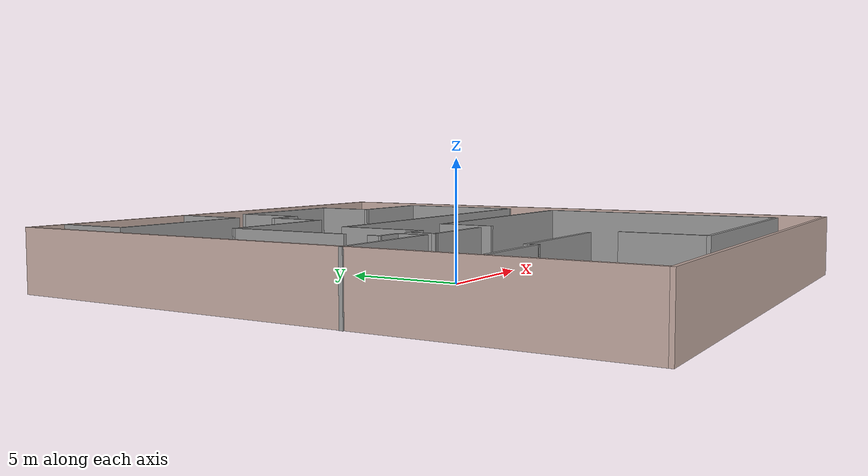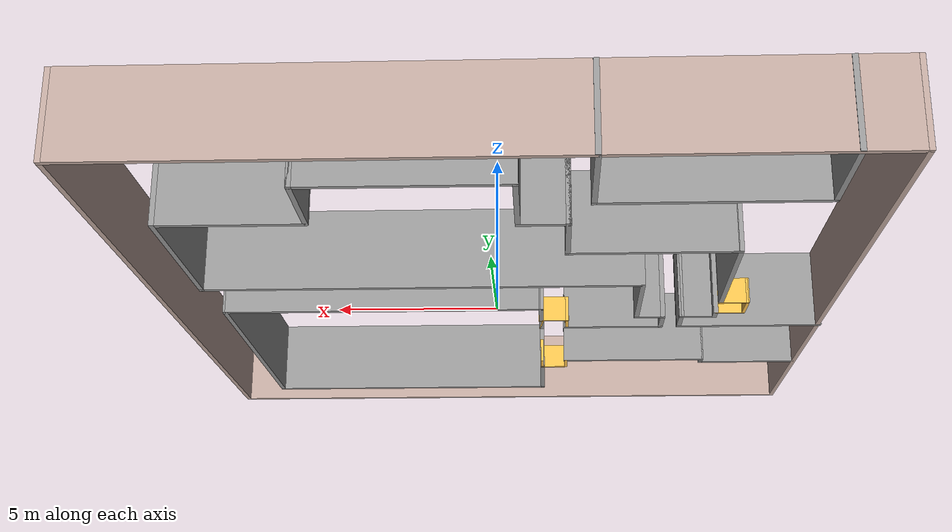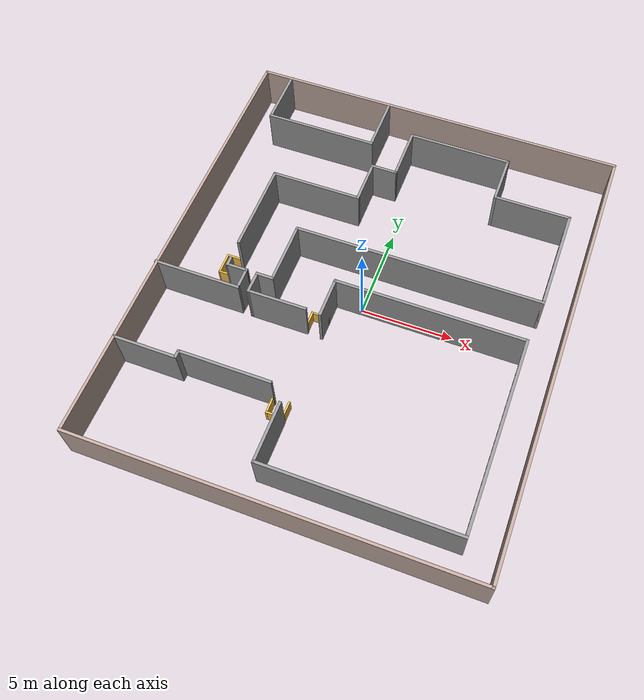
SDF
<?xml version='1.0'?>
<sdf version='1.6'>
  <model name='IKEAfactoryV2'>
    <pose frame=''>-0.0511 -0.01664 0 0 -0 0</pose>
    <link name='Wall_0'>
      <collision name='Wall_0_Collision'>
        <geometry>
          <box>
            <size>21 0.15 2.5</size>
          </box>
        </geometry>
        <pose frame=''>0 0 1.25 0 -0 0</pose>
      </collision>
      <visual name='Wall_0_Visual'>
        <pose frame=''>0 0 1.25 0 -0 0</pose>
        <geometry>
          <box>
            <size>21 0.15 2.5</size>
          </box>
        </geometry>
        <material>
          <script>
            <uri>file://media/materials/scripts/gazebo.material</uri>
            <name>Gazebo/Grey</name>
          </script>
          <ambient>0.760784 0.662745 0.627451 1</ambient>
        </material>
        <meta>
          <layer>0</layer>
        </meta>
      </visual>
      <pose frame=''>0.0271 -12.1824 0 0 -0 3.14159</pose>
    </link>
    <link name='Wall_1'>
      <collision name='Wall_1_Collision'>
        <geometry>
          <box>
            <size>24.5 0.15 2.5</size>
          </box>
        </geometry>
        <pose frame=''>0 0 1.25 0 -0 0</pose>
      </collision>
      <visual name='Wall_1_Visual'>
        <pose frame=''>0 0 1.25 0 -0 0</pose>
        <geometry>
          <box>
            <size>24.5 0.15 2.5</size>
          </box>
        </geometry>
        <material>
          <script>
            <uri>file://media/materials/scripts/gazebo.material</uri>
            <name>Gazebo/Grey</name>
          </script>
          <ambient>0.760784 0.662745 0.627451 1</ambient>
        </material>
        <meta>
          <layer>0</layer>
        </meta>
      </visual>
      <pose frame=''>-10.3979 -0.00736 0 0 -0 1.5708</pose>
    </link>
    <link name='Wall_11'>
      <collision name='Wall_11_Collision'>
        <geometry>
          <box>
            <size>3.5 0.15 2.5</size>
          </box>
        </geometry>
        <pose frame=''>0 0 1.25 0 -0 0</pose>
      </collision>
      <visual name='Wall_11_Visual'>
        <pose frame=''>0 0 1.25 0 -0 0</pose>
        <geometry>
          <box>
            <size>3.5 0.15 2.5</size>
          </box>
        </geometry>
        <material>
          <script>
            <uri>file://media/materials/scripts/gazebo.material</uri>
            <name>Gazebo/Grey</name>
          </script>
          <ambient>1 1 1 1</ambient>
        </material>
        <meta>
          <layer>0</layer>
        </meta>
      </visual>
      <pose frame=''>-8.71777 -6.91658 0 0 -0 0</pose>
    </link>
    <link name='Wall_14'>
      <collision name='Wall_14_Collision'>
        <geometry>
          <box>
            <size>0.5 0.15 2.5</size>
          </box>
        </geometry>
        <pose frame=''>0 0 1.25 0 -0 0</pose>
      </collision>
      <visual name='Wall_14_Visual'>
        <pose frame=''>0 0 1.25 0 -0 0</pose>
        <geometry>
          <box>
            <size>0.5 0.15 2.5</size>
          </box>
        </geometry>
        <material>
          <script>
            <uri>file://media/materials/scripts/gazebo.material</uri>
            <name>Gazebo/Grey</name>
          </script>
          <ambient>1 1 1 1</ambient>
        </material>
        <meta>
          <layer>0</layer>
        </meta>
      </visual>
      <pose frame=''>-7.04277 -6.74158 0 0 -0 1.5708</pose>
    </link>
    <link name='Wall_17'>
      <collision name='Wall_17_Collision'>
        <geometry>
          <box>
            <size>5 0.15 2.5</size>
          </box>
        </geometry>
        <pose frame=''>0 0 1.25 0 -0 0</pose>
      </collision>
      <visual name='Wall_17_Visual'>
        <pose frame=''>0 0 1.25 0 -0 0</pose>
        <geometry>
          <box>
            <size>5 0.15 2.5</size>
          </box>
        </geometry>
        <material>
          <script>
            <uri>file://media/materials/scripts/gazebo.material</uri>
            <name>Gazebo/Grey</name>
          </script>
          <ambient>1 1 1 1</ambient>
        </material>
        <meta>
          <layer>0</layer>
        </meta>
      </visual>
      <pose frame=''>-4.61783 -6.56647 0 0 -0 4.5e-05</pose>
    </link>
    <link name='Wall_18'>
      <collision name='Wall_18_Collision'>
        <geometry>
          <box>
            <size>0.950221 0.1 0.8</size>
          </box>
        </geometry>
        <pose frame=''>0 0 0.4 0 -0 0</pose>
      </collision>
      <visual name='Wall_18_Visual'>
        <pose frame=''>0 0 0.4 0 -0 0</pose>
        <geometry>
          <box>
            <size>0.950221 0.1 0.8</size>
          </box>
        </geometry>
        <material>
          <script>
            <uri>file://media/materials/scripts/gazebo.material</uri>
            <name>Gazebo/Grey</name>
          </script>
          <ambient>1 0.764706 0.305882 1</ambient>
        </material>
        <meta>
          <layer>0</layer>
        </meta>
      </visual>
      <pose frame=''>-2.1929 -6.99136 0 0 -0 -1.5708</pose>
    </link>
    <link name='Wall_19'>
      <collision name='Wall_19_Collision'>
        <geometry>
          <box>
            <size>0.950134 0.1 0.8</size>
          </box>
        </geometry>
        <pose frame=''>0 0 0.4 0 -0 0</pose>
      </collision>
      <visual name='Wall_19_Visual'>
        <pose frame=''>0 0 0.4 0 -0 0</pose>
        <geometry>
          <box>
            <size>0.950134 0.1 0.8</size>
          </box>
        </geometry>
        <material>
          <script>
            <uri>file://media/materials/scripts/gazebo.material</uri>
            <name>Gazebo/Grey</name>
          </script>
          <ambient>1 0.764706 0.305882 1</ambient>
        </material>
        <meta>
          <layer>0</layer>
        </meta>
      </visual>
      <pose frame=''>-1.7679 -7.41636 0 0 -0 0</pose>
    </link>
    <link name='Wall_20'>
      <collision name='Wall_20_Collision'>
        <geometry>
          <box>
            <size>0.94978 0.1 0.8</size>
          </box>
        </geometry>
        <pose frame=''>0 0 0.4 0 -0 0</pose>
      </collision>
      <visual name='Wall_20_Visual'>
        <pose frame=''>0 0 0.4 0 -0 0</pose>
        <geometry>
          <box>
            <size>0.94978 0.1 0.8</size>
          </box>
        </geometry>
        <material>
          <script>
            <uri>file://media/materials/scripts/gazebo.material</uri>
            <name>Gazebo/Grey</name>
          </script>
          <ambient>1 0.764706 0.305882 1</ambient>
        </material>
        <meta>
          <layer>0</layer>
        </meta>
      </visual>
      <pose frame=''>-1.3429 -6.99136 0 0 -0 1.5708</pose>
    </link>
    <link name='Wall_22'>
      <collision name='Wall_22_Collision'>
        <geometry>
          <box>
            <size>3.25 0.15 2.5</size>
          </box>
        </geometry>
        <pose frame=''>0 0 1.25 0 -0 0</pose>
      </collision>
      <visual name='Wall_22_Visual'>
        <pose frame=''>0 0 1.25 0 -0 0</pose>
        <geometry>
          <box>
            <size>3.25 0.15 2.5</size>
          </box>
        </geometry>
        <material>
          <script>
            <uri>file://media/materials/scripts/gazebo.material</uri>
            <name>Gazebo/Grey</name>
          </script>
          <ambient>1 1 1 1</ambient>
        </material>
        <meta>
          <layer>0</layer>
        </meta>
      </visual>
      <pose frame=''>-1.34283 -8.96647 0 0 -0 -1.57075</pose>
    </link>
    <link name='Wall_23'>
      <collision name='Wall_23_Collision'>
        <geometry>
          <box>
            <size>10.25 0.15 2.5</size>
          </box>
        </geometry>
        <pose frame=''>0 0 1.25 0 -0 0</pose>
      </collision>
      <visual name='Wall_23_Visual'>
        <pose frame=''>0 0 1.25 0 -0 0</pose>
        <geometry>
          <box>
            <size>10.25 0.15 2.5</size>
          </box>
        </geometry>
        <material>
          <script>
            <uri>file://media/materials/scripts/gazebo.material</uri>
            <name>Gazebo/Grey</name>
          </script>
          <ambient>1 1 1 1</ambient>
        </material>
        <meta>
          <layer>0</layer>
        </meta>
      </visual>
      <pose frame=''>3.70723 -10.5166 0 0 -0 0</pose>
    </link>
    <link name='Wall_24'>
      <collision name='Wall_24_Collision'>
        <geometry>
          <box>
            <size>10.5 0.15 2.5</size>
          </box>
        </geometry>
        <pose frame=''>0 0 1.25 0 -0 0</pose>
      </collision>
      <visual name='Wall_24_Visual'>
        <pose frame=''>0 0 1.25 0 -0 0</pose>
        <geometry>
          <box>
            <size>10.5 0.15 2.5</size>
          </box>
        </geometry>
        <material>
          <script>
            <uri>file://media/materials/scripts/gazebo.material</uri>
            <name>Gazebo/Grey</name>
          </script>
          <ambient>1 1 1 1</ambient>
        </material>
        <meta>
          <layer>0</layer>
        </meta>
      </visual>
      <pose frame=''>8.75723 -5.34158 0 0 -0 1.5708</pose>
    </link>
    <link name='Wall_25'>
      <collision name='Wall_25_Collision'>
        <geometry>
          <box>
            <size>10.2402 0.15 2.5</size>
          </box>
        </geometry>
        <pose frame=''>0 0 1.25 0 -0 0</pose>
      </collision>
      <visual name='Wall_25_Visual'>
        <pose frame=''>0 0 1.25 0 -0 0</pose>
        <geometry>
          <box>
            <size>10.2402 0.15 2.5</size>
          </box>
        </geometry>
        <material>
          <script>
            <uri>file://media/materials/scripts/gazebo.material</uri>
            <name>Gazebo/Grey</name>
          </script>
          <ambient>1 1 1 1</ambient>
        </material>
        <meta>
          <layer>0</layer>
        </meta>
      </visual>
      <pose frame=''>3.71213 -0.16495 0 0 -0 3.14127</pose>
    </link>
    <link name='Wall_27'>
      <collision name='Wall_27_Collision'>
        <geometry>
          <box>
            <size>2.25 0.15 2.5</size>
          </box>
        </geometry>
        <pose frame=''>0 0 1.25 0 -0 0</pose>
      </collision>
      <visual name='Wall_27_Visual'>
        <pose frame=''>0 0 1.25 0 -0 0</pose>
        <geometry>
          <box>
            <size>2.25 0.15 2.5</size>
          </box>
        </geometry>
        <material>
          <script>
            <uri>file://media/materials/scripts/gazebo.material</uri>
            <name>Gazebo/Grey</name>
          </script>
          <ambient>1 1 1 1</ambient>
        </material>
        <meta>
          <layer>0</layer>
        </meta>
      </visual>
      <pose frame=''>-1.33607 -1.21334 0 0 -0 -1.57063</pose>
    </link>
    <link name='Wall_30'>
      <collision name='Wall_30_Collision'>
        <geometry>
          <box>
            <size>0.916541 0.1 0.8</size>
          </box>
        </geometry>
        <pose frame=''>0 0 0.4 0 -0 0</pose>
      </collision>
      <visual name='Wall_30_Visual'>
        <pose frame=''>0 0 0.4 0 -0 0</pose>
        <geometry>
          <box>
            <size>0.916541 0.1 0.8</size>
          </box>
        </geometry>
        <material>
          <script>
            <uri>file://media/materials/scripts/gazebo.material</uri>
            <name>Gazebo/Grey</name>
          </script>
          <ambient>1 0.764706 0.305882 1</ambient>
        </material>
        <meta>
          <layer>0</layer>
        </meta>
      </visual>
      <pose frame=''>-2.16649 -1.82481 0 0 -0 -1.57128</pose>
    </link>
    <link name='Wall_31'>
      <collision name='Wall_31_Collision'>
        <geometry>
          <box>
            <size>3.23616 0.15 2.5</size>
          </box>
        </geometry>
        <pose frame=''>0 0 1.25 0 -0 0</pose>
      </collision>
      <visual name='Wall_31_Visual'>
        <pose frame=''>0 0 1.25 0 -0 0</pose>
        <geometry>
          <box>
            <size>3.23616 0.15 2.5</size>
          </box>
        </geometry>
        <material>
          <script>
            <uri>file://media/materials/scripts/gazebo.material</uri>
            <name>Gazebo/Grey</name>
          </script>
          <ambient>1 1 1 1</ambient>
        </material>
        <meta>
          <layer>0</layer>
        </meta>
      </visual>
      <pose frame=''>-3.7094 -2.22824 0 0 -0 -3.13967</pose>
    </link>
    <link name='Wall_34'>
      <collision name='Wall_34_Collision'>
        <geometry>
          <box>
            <size>1.25 0.15 2.5</size>
          </box>
        </geometry>
        <pose frame=''>0 0 1.25 0 -0 0</pose>
      </collision>
      <visual name='Wall_34_Visual'>
        <pose frame=''>0 0 1.25 0 -0 0</pose>
        <geometry>
          <box>
            <size>1.25 0.15 2.5</size>
          </box>
        </geometry>
        <material>
          <script>
            <uri>file://media/materials/scripts/gazebo.material</uri>
            <name>Gazebo/Grey</name>
          </script>
          <ambient>1 1 1 1</ambient>
        </material>
        <meta>
          <layer>0</layer>
        </meta>
      </visual>
      <pose frame=''>-5.2521 -1.68121 0 0 -0 1.5708</pose>
    </link>
    <link name='Wall_35'>
      <collision name='Wall_35_Collision'>
        <geometry>
          <box>
            <size>1 0.15 2.5</size>
          </box>
        </geometry>
        <pose frame=''>0 0 1.25 0 -0 0</pose>
      </collision>
      <visual name='Wall_35_Visual'>
        <pose frame=''>0 0 1.25 0 -0 0</pose>
        <geometry>
          <box>
            <size>1 0.15 2.5</size>
          </box>
        </geometry>
        <material>
          <script>
            <uri>file://media/materials/scripts/gazebo.material</uri>
            <name>Gazebo/Grey</name>
          </script>
          <ambient>1 1 1 1</ambient>
        </material>
        <meta>
          <layer>0</layer>
        </meta>
      </visual>
      <pose frame=''>-4.8271 -1.13122 0 0 -0 0</pose>
    </link>
    <link name='Wall_36'>
      <collision name='Wall_36_Collision'>
        <geometry>
          <box>
            <size>3.5 0.15 2.5</size>
          </box>
        </geometry>
        <pose frame=''>0 0 1.25 0 -0 0</pose>
      </collision>
      <visual name='Wall_36_Visual'>
        <pose frame=''>0 0 1.25 0 -0 0</pose>
        <geometry>
          <box>
            <size>3.5 0.15 2.5</size>
          </box>
        </geometry>
        <material>
          <script>
            <uri>file://media/materials/scripts/gazebo.material</uri>
            <name>Gazebo/Grey</name>
          </script>
          <ambient>1 1 1 1</ambient>
        </material>
        <meta>
          <layer>0</layer>
        </meta>
      </visual>
      <pose frame=''>-4.4021 0.543785 0 0 -0 1.5708</pose>
    </link>
    <link name='Wall_37'>
      <collision name='Wall_37_Collision'>
        <geometry>
          <box>
            <size>13.5 0.15 2.5</size>
          </box>
        </geometry>
        <pose frame=''>0 0 1.25 0 -0 0</pose>
      </collision>
      <visual name='Wall_37_Visual'>
        <pose frame=''>0 0 1.25 0 -0 0</pose>
        <geometry>
          <box>
            <size>13.5 0.15 2.5</size>
          </box>
        </geometry>
        <material>
          <script>
            <uri>file://media/materials/scripts/gazebo.material</uri>
            <name>Gazebo/Grey</name>
          </script>
          <ambient>1 1 1 1</ambient>
        </material>
        <meta>
          <layer>0</layer>
        </meta>
      </visual>
      <pose frame=''>2.2729 2.21879 0 0 -0 0</pose>
    </link>
    <link name='Wall_39'>
      <collision name='Wall_39_Collision'>
        <geometry>
          <box>
            <size>5.75 0.15 2.5</size>
          </box>
        </geometry>
        <pose frame=''>0 0 1.25 0 -0 0</pose>
      </collision>
      <visual name='Wall_39_Visual'>
        <pose frame=''>0 0 1.25 0 -0 0</pose>
        <geometry>
          <box>
            <size>5.75 0.15 2.5</size>
          </box>
        </geometry>
        <material>
          <script>
            <uri>file://media/materials/scripts/gazebo.material</uri>
            <name>Gazebo/Grey</name>
          </script>
          <ambient>1 1 1 1</ambient>
        </material>
        <meta>
          <layer>0</layer>
        </meta>
      </visual>
      <pose frame=''>8.9479 5.01879 0 0 -0 1.5708</pose>
    </link>
    <link name='Wall_4'>
      <collision name='Wall_4_Collision'>
        <geometry>
          <box>
            <size>21 0.15 2.5</size>
          </box>
        </geometry>
        <pose frame=''>0 0 1.25 0 -0 0</pose>
      </collision>
      <visual name='Wall_4_Visual'>
        <pose frame=''>0 0 1.25 0 -0 0</pose>
        <geometry>
          <box>
            <size>21 0.15 2.5</size>
          </box>
        </geometry>
        <material>
          <script>
            <uri>file://media/materials/scripts/gazebo.material</uri>
            <name>Gazebo/Grey</name>
          </script>
          <ambient>0.760784 0.662745 0.627451 1</ambient>
        </material>
        <meta>
          <layer>0</layer>
        </meta>
      </visual>
      <pose frame=''>0.0271 12.1676 0 0 -0 0</pose>
    </link>
    <link name='Wall_40'>
      <collision name='Wall_40_Collision'>
        <geometry>
          <box>
            <size>4.25 0.15 2.5</size>
          </box>
        </geometry>
        <pose frame=''>0 0 1.25 0 -0 0</pose>
      </collision>
      <visual name='Wall_40_Visual'>
        <pose frame=''>0 0 1.25 0 -0 0</pose>
        <geometry>
          <box>
            <size>4.25 0.15 2.5</size>
          </box>
        </geometry>
        <material>
          <script>
            <uri>file://media/materials/scripts/gazebo.material</uri>
            <name>Gazebo/Grey</name>
          </script>
          <ambient>1 1 1 1</ambient>
        </material>
        <meta>
          <layer>0</layer>
        </meta>
      </visual>
      <pose frame=''>6.8979 7.81879 0 0 -0 3.14159</pose>
    </link>
    <link name='Wall_41'>
      <collision name='Wall_41_Collision'>
        <geometry>
          <box>
            <size>2.75 0.15 2.5</size>
          </box>
        </geometry>
        <pose frame=''>0 0 1.25 0 -0 0</pose>
      </collision>
      <visual name='Wall_41_Visual'>
        <pose frame=''>0 0 1.25 0 -0 0</pose>
        <geometry>
          <box>
            <size>2.75 0.15 2.5</size>
          </box>
        </geometry>
        <material>
          <script>
            <uri>file://media/materials/scripts/gazebo.material</uri>
            <name>Gazebo/Grey</name>
          </script>
          <ambient>1 1 1 1</ambient>
        </material>
        <meta>
          <layer>0</layer>
        </meta>
      </visual>
      <pose frame=''>4.8479 9.11879 0 0 -0 1.5708</pose>
    </link>
    <link name='Wall_42'>
      <collision name='Wall_42_Collision'>
        <geometry>
          <box>
            <size>5.75 0.15 2.5</size>
          </box>
        </geometry>
        <pose frame=''>0 0 1.25 0 -0 0</pose>
      </collision>
      <visual name='Wall_42_Visual'>
        <pose frame=''>0 0 1.25 0 -0 0</pose>
        <geometry>
          <box>
            <size>5.75 0.15 2.5</size>
          </box>
        </geometry>
        <material>
          <script>
            <uri>file://media/materials/scripts/gazebo.material</uri>
            <name>Gazebo/Grey</name>
          </script>
          <ambient>1 1 1 1</ambient>
        </material>
        <meta>
          <layer>0</layer>
        </meta>
      </visual>
      <pose frame=''>2.0479 10.4188 0 0 -0 3.14159</pose>
    </link>
    <link name='Wall_43'>
      <collision name='Wall_43_Collision'>
        <geometry>
          <box>
            <size>3 0.15 2.5</size>
          </box>
        </geometry>
        <pose frame=''>0 0 1.25 0 -0 0</pose>
      </collision>
      <visual name='Wall_43_Visual'>
        <pose frame=''>0 0 1.25 0 -0 0</pose>
        <geometry>
          <box>
            <size>3 0.15 2.5</size>
          </box>
        </geometry>
        <material>
          <script>
            <uri>file://media/materials/scripts/gazebo.material</uri>
            <name>Gazebo/Grey</name>
          </script>
          <ambient>1 1 1 1</ambient>
        </material>
        <meta>
          <layer>0</layer>
        </meta>
      </visual>
      <pose frame=''>-0.752102 8.99379 0 0 -0 -1.5708</pose>
    </link>
    <link name='Wall_44'>
      <collision name='Wall_44_Collision'>
        <geometry>
          <box>
            <size>1.5 0.15 2.5</size>
          </box>
        </geometry>
        <pose frame=''>0 0 1.25 0 -0 0</pose>
      </collision>
      <visual name='Wall_44_Visual'>
        <pose frame=''>0 0 1.25 0 -0 0</pose>
        <geometry>
          <box>
            <size>1.5 0.15 2.5</size>
          </box>
        </geometry>
        <material>
          <script>
            <uri>file://media/materials/scripts/gazebo.material</uri>
            <name>Gazebo/Grey</name>
          </script>
          <ambient>1 1 1 1</ambient>
        </material>
        <meta>
          <layer>0</layer>
        </meta>
      </visual>
      <pose frame=''>-1.4271 7.56879 0 0 -0 3.14159</pose>
    </link>
    <link name='Wall_45'>
      <collision name='Wall_45_Collision'>
        <geometry>
          <box>
            <size>2.5 0.15 2.5</size>
          </box>
        </geometry>
        <pose frame=''>0 0 1.25 0 -0 0</pose>
      </collision>
      <visual name='Wall_45_Visual'>
        <pose frame=''>0 0 1.25 0 -0 0</pose>
        <geometry>
          <box>
            <size>2.5 0.15 2.5</size>
          </box>
        </geometry>
        <material>
          <script>
            <uri>file://media/materials/scripts/gazebo.material</uri>
            <name>Gazebo/Grey</name>
          </script>
          <ambient>1 1 1 1</ambient>
        </material>
        <meta>
          <layer>0</layer>
        </meta>
      </visual>
      <pose frame=''>-2.1021 6.39379 0 0 -0 -1.5708</pose>
    </link>
    <link name='Wall_46'>
      <collision name='Wall_46_Collision'>
        <geometry>
          <box>
            <size>5 0.15 2.5</size>
          </box>
        </geometry>
        <pose frame=''>0 0 1.25 0 -0 0</pose>
      </collision>
      <visual name='Wall_46_Visual'>
        <pose frame=''>0 0 1.25 0 -0 0</pose>
        <geometry>
          <box>
            <size>5 0.15 2.5</size>
          </box>
        </geometry>
        <material>
          <script>
            <uri>file://media/materials/scripts/gazebo.material</uri>
            <name>Gazebo/Grey</name>
          </script>
          <ambient>1 1 1 1</ambient>
        </material>
        <meta>
          <layer>0</layer>
        </meta>
      </visual>
      <pose frame=''>-4.5271 5.21878 0 0 -0 3.14159</pose>
    </link>
    <link name='Wall_47'>
      <collision name='Wall_47_Collision'>
        <geometry>
          <box>
            <size>5 0.15 2.5</size>
          </box>
        </geometry>
        <pose frame=''>0 0 1.25 0 -0 0</pose>
      </collision>
      <visual name='Wall_47_Visual'>
        <pose frame=''>0 0 1.25 0 -0 0</pose>
        <geometry>
          <box>
            <size>5 0.15 2.5</size>
          </box>
        </geometry>
        <material>
          <script>
            <uri>file://media/materials/scripts/gazebo.material</uri>
            <name>Gazebo/Grey</name>
          </script>
          <ambient>1 1 1 1</ambient>
        </material>
        <meta>
          <layer>0</layer>
        </meta>
      </visual>
      <pose frame=''>-6.9485 2.79371 0 0 -0 -1.56931</pose>
    </link>
    <link name='Wall_48'>
      <collision name='Wall_48_Collision'>
        <geometry>
          <box>
            <size>0.939794 0.1 0.8</size>
          </box>
        </geometry>
        <pose frame=''>0 0 0.4 0 -0 0</pose>
      </collision>
      <visual name='Wall_48_Visual'>
        <pose frame=''>0 0 0.4 0 -0 0</pose>
        <geometry>
          <box>
            <size>0.939794 0.1 0.8</size>
          </box>
        </geometry>
        <material>
          <script>
            <uri>file://media/materials/scripts/gazebo.material</uri>
            <name>Gazebo/Grey</name>
          </script>
          <ambient>1 0.764706 0.305882 1</ambient>
        </material>
        <meta>
          <layer>0</layer>
        </meta>
      </visual>
      <pose frame=''>-7.3649 0.36864 0 0 -0 3.14159</pose>
    </link>
    <link name='Wall_5'>
      <collision name='Wall_5_Collision'>
        <geometry>
          <box>
            <size>24.5 0.15 2.5</size>
          </box>
        </geometry>
        <pose frame=''>0 0 1.25 0 -0 0</pose>
      </collision>
      <visual name='Wall_5_Visual'>
        <pose frame=''>0 0 1.25 0 -0 0</pose>
        <geometry>
          <box>
            <size>24.5 0.15 2.5</size>
          </box>
        </geometry>
        <material>
          <script>
            <uri>file://media/materials/scripts/gazebo.material</uri>
            <name>Gazebo/Grey</name>
          </script>
          <ambient>0.760784 0.662745 0.627451 1</ambient>
        </material>
        <meta>
          <layer>0</layer>
        </meta>
      </visual>
      <pose frame=''>10.4521 -0.00736 0 0 -0 -1.5708</pose>
    </link>
    <link name='Wall_52'>
      <collision name='Wall_52_Collision'>
        <geometry>
          <box>
            <size>0.975 0.1 0.8</size>
          </box>
        </geometry>
        <pose frame=''>0 0 0.4 0 -0 0</pose>
      </collision>
      <visual name='Wall_52_Visual'>
        <pose frame=''>0 0 0.4 0 -0 0</pose>
        <geometry>
          <box>
            <size>0.975 0.1 0.8</size>
          </box>
        </geometry>
        <material>
          <script>
            <uri>file://media/materials/scripts/gazebo.material</uri>
            <name>Gazebo/Grey</name>
          </script>
          <ambient>1 0.764706 0.305882 1</ambient>
        </material>
        <meta>
          <layer>0</layer>
        </meta>
      </visual>
      <pose frame=''>-7.34327 -0.730402 0 0 -0 -9.5e-05</pose>
    </link>
    <link name='Wall_53'>
      <collision name='Wall_53_Collision'>
        <geometry>
          <box>
            <size>0.541472 0.15 2.5</size>
          </box>
        </geometry>
        <pose frame=''>0 0 1.25 0 -0 0</pose>
      </collision>
      <visual name='Wall_53_Visual'>
        <pose frame=''>0 0 1.25 0 -0 0</pose>
        <geometry>
          <box>
            <size>0.541472 0.15 2.5</size>
          </box>
        </geometry>
        <material>
          <script>
            <uri>file://media/materials/scripts/gazebo.material</uri>
            <name>Gazebo/Grey</name>
          </script>
          <ambient>1 1 1 1</ambient>
        </material>
        <meta>
          <layer>0</layer>
        </meta>
      </visual>
      <pose frame=''>-6.90804 -0.926171 0 0 -0 -1.56144</pose>
    </link>
    <link name='Wall_54'>
      <collision name='Wall_54_Collision'>
        <geometry>
          <box>
            <size>1.20411 0.15 2.5</size>
          </box>
        </geometry>
        <pose frame=''>0 0 1.25 0 -0 0</pose>
      </collision>
      <visual name='Wall_54_Visual'>
        <pose frame=''>0 0 1.25 0 -0 0</pose>
        <geometry>
          <box>
            <size>1.20411 0.15 2.5</size>
          </box>
        </geometry>
        <material>
          <script>
            <uri>file://media/materials/scripts/gazebo.material</uri>
            <name>Gazebo/Grey</name>
          </script>
          <ambient>1 1 1 1</ambient>
        </material>
        <meta>
          <layer>0</layer>
        </meta>
      </visual>
      <pose frame=''>-6.37916 -1.12151 0 0 -0 0.000743</pose>
    </link>
    <link name='Wall_55'>
      <collision name='Wall_55_Collision'>
        <geometry>
          <box>
            <size>1.25 0.15 2.5</size>
          </box>
        </geometry>
        <pose frame=''>0 0 1.25 0 -0 0</pose>
      </collision>
      <visual name='Wall_55_Visual'>
        <pose frame=''>0 0 1.25 0 -0 0</pose>
        <geometry>
          <box>
            <size>1.25 0.15 2.5</size>
          </box>
        </geometry>
        <material>
          <script>
            <uri>file://media/materials/scripts/gazebo.material</uri>
            <name>Gazebo/Grey</name>
          </script>
          <ambient>1 1 1 1</ambient>
        </material>
        <meta>
          <layer>0</layer>
        </meta>
      </visual>
      <pose frame=''>-5.8521 -1.67111 0 0 -0 -1.5708</pose>
    </link>
    <link name='Wall_56'>
      <collision name='Wall_56_Collision'>
        <geometry>
          <box>
            <size>4.75 0.15 2.5</size>
          </box>
        </geometry>
        <pose frame=''>0 0 1.25 0 -0 0</pose>
      </collision>
      <visual name='Wall_56_Visual'>
        <pose frame=''>0 0 1.25 0 -0 0</pose>
        <geometry>
          <box>
            <size>4.75 0.15 2.5</size>
          </box>
        </geometry>
        <material>
          <script>
            <uri>file://media/materials/scripts/gazebo.material</uri>
            <name>Gazebo/Grey</name>
          </script>
          <ambient>1 1 1 1</ambient>
        </material>
        <meta>
          <layer>0</layer>
        </meta>
      </visual>
      <pose frame=''>-8.1521 -2.22112 0 0 -0 3.14159</pose>
    </link>
    <link name='Wall_67'>
      <collision name='Wall_67_Collision'>
        <geometry>
          <box>
            <size>0.975001 0.1 0.8</size>
          </box>
        </geometry>
        <pose frame=''>0 0 0.4 0 -0 0</pose>
      </collision>
      <visual name='Wall_67_Visual'>
        <pose frame=''>0 0 0.4 0 -0 0</pose>
        <geometry>
          <box>
            <size>0.975001 0.1 0.8</size>
          </box>
        </geometry>
        <material>
          <script>
            <uri>file://media/materials/scripts/gazebo.material</uri>
            <name>Gazebo/Grey</name>
          </script>
          <ambient>1 0.764706 0.305882 1</ambient>
        </material>
        <meta>
          <layer>0</layer>
        </meta>
      </visual>
      <pose frame=''>-1.73619 -1.41745 0 0 -0 -0.001143</pose>
    </link>
    <link name='Wall_69'>
      <collision name='Wall_69_Collision'>
        <geometry>
          <box>
            <size>0.920299 0.1 0.8</size>
          </box>
        </geometry>
        <pose frame=''>0 0 0.4 0 -0 0</pose>
      </collision>
      <visual name='Wall_69_Visual'>
        <pose frame=''>0 0 0.4 0 -0 0</pose>
        <geometry>
          <box>
            <size>0.920299 0.1 0.8</size>
          </box>
        </geometry>
        <material>
          <script>
            <uri>file://media/materials/scripts/gazebo.material</uri>
            <name>Gazebo/Grey</name>
          </script>
          <ambient>1 0.764706 0.305882 1</ambient>
        </material>
        <meta>
          <layer>0</layer>
        </meta>
      </visual>
      <pose frame=''>-1.3419 -1.85336 0 0 -0 1.58543</pose>
    </link>
    <link name='Wall_7'>
      <collision name='Wall_7_Collision'>
        <geometry>
          <box>
            <size>3.25 0.15 2.5</size>
          </box>
        </geometry>
        <pose frame=''>0 0 1.25 0 -0 0</pose>
      </collision>
      <visual name='Wall_7_Visual'>
        <pose frame=''>0 0 1.25 0 -0 0</pose>
        <geometry>
          <box>
            <size>3.25 0.15 2.5</size>
          </box>
        </geometry>
        <material>
          <script>
            <uri>file://media/materials/scripts/gazebo.material</uri>
            <name>Gazebo/Grey</name>
          </script>
          <ambient>1 1 1 1</ambient>
        </material>
        <meta>
          <layer>0</layer>
        </meta>
      </visual>
      <pose frame=''>-8.82335 10.6324 0 0 -0 -1.5708</pose>
    </link>
    <link name='Wall_74'>
      <collision name='Wall_74_Collision'>
        <geometry>
          <box>
            <size>1.19909 0.1 0.8</size>
          </box>
        </geometry>
        <pose frame=''>0 0 0.4 0 -0 0</pose>
      </collision>
      <visual name='Wall_74_Visual'>
        <pose frame=''>0 0 0.4 0 -0 0</pose>
        <geometry>
          <box>
            <size>1.19909 0.1 0.8</size>
          </box>
        </geometry>
        <material>
          <script>
            <uri>file://media/materials/scripts/gazebo.material</uri>
            <name>Gazebo/Grey</name>
          </script>
          <ambient>1 0.764706 0.305882 1</ambient>
        </material>
        <meta>
          <layer>0</layer>
        </meta>
      </visual>
      <pose frame=''>-7.7829 -0.18086 0 0 -0 -1.56716</pose>
    </link>
    <link name='Wall_8'>
      <collision name='Wall_8_Collision'>
        <geometry>
          <box>
            <size>6.25 0.15 2.5</size>
          </box>
        </geometry>
        <pose frame=''>0 0 1.25 0 -0 0</pose>
      </collision>
      <visual name='Wall_8_Visual'>
        <pose frame=''>0 0 1.25 0 -0 0</pose>
        <geometry>
          <box>
            <size>6.25 0.15 2.5</size>
          </box>
        </geometry>
        <material>
          <script>
            <uri>file://media/materials/scripts/gazebo.material</uri>
            <name>Gazebo/Grey</name>
          </script>
          <ambient>1 1 1 1</ambient>
        </material>
        <meta>
          <layer>0</layer>
        </meta>
      </visual>
      <pose frame=''>-5.77335 9.08236 0 0 -0 0</pose>
    </link>
    <link name='Wall_9'>
      <collision name='Wall_9_Collision'>
        <geometry>
          <box>
            <size>3.25 0.15 2.5</size>
          </box>
        </geometry>
        <pose frame=''>0 0 1.25 0 -0 0</pose>
      </collision>
      <visual name='Wall_9_Visual'>
        <pose frame=''>0 0 1.25 0 -0 0</pose>
        <geometry>
          <box>
            <size>3.25 0.15 2.5</size>
          </box>
        </geometry>
        <material>
          <script>
            <uri>file://media/materials/scripts/gazebo.material</uri>
            <name>Gazebo/Grey</name>
          </script>
          <ambient>1 1 1 1</ambient>
        </material>
        <meta>
          <layer>0</layer>
        </meta>
      </visual>
      <pose frame=''>-2.72335 10.6324 0 0 -0 1.5708</pose>
    </link>
    <static>1</static>
  </model>
</sdf>
